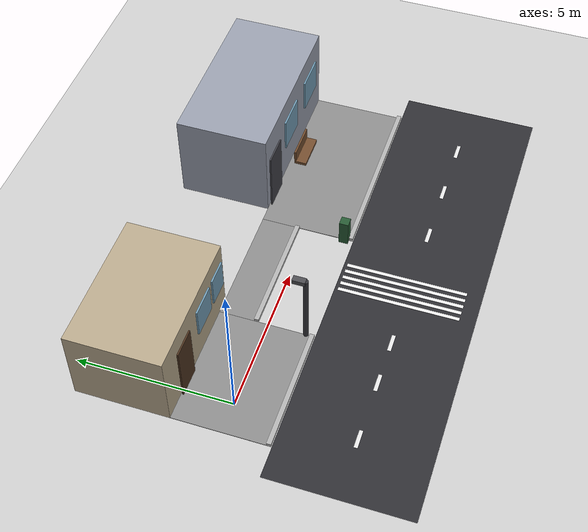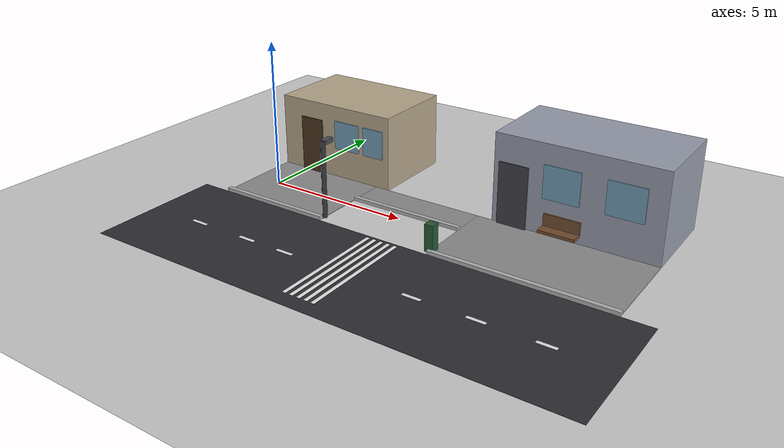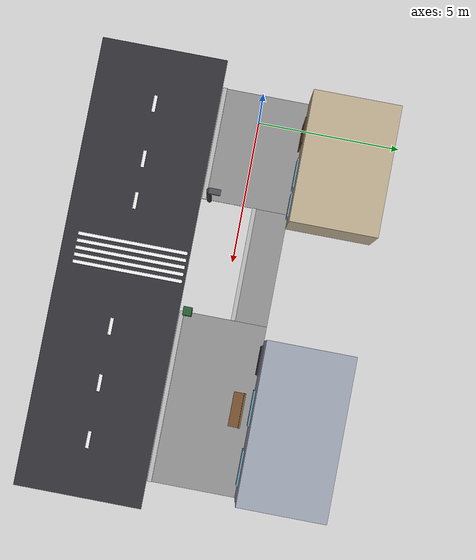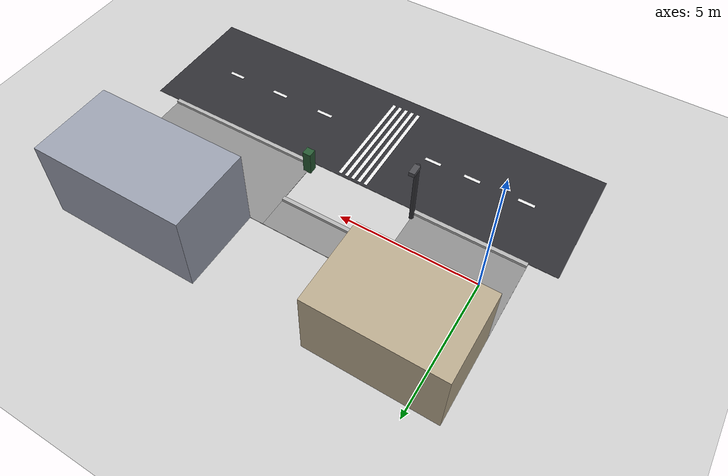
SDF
<?xml version="1.0"?>
<sdf version="1.6">
  <world name="urban_world">

    <include><uri>model://sun</uri></include>
    <include><uri>model://ground_plane</uri></include>

    <!-- Extra fill light so the tall facades do not cast the walkway into deep shadow.
         Uses no online model DB. -->
    <light name="fill" type="directional">
      <pose>4 -2 8 0 0 0</pose>
      <diffuse>0.5 0.5 0.5 1</diffuse>
      <specular>0.1 0.1 0.1 1</specular>
      <direction>-0.3 0.4 -1.0</direction>
      <cast_shadows>false</cast_shadows>
    </light>

    <physics type="ode">
      <max_step_size>0.005</max_step_size>
      <real_time_factor>1.0</real_time_factor>
      <real_time_update_rate>200</real_time_update_rate>
    </physics>

    <!-- Provides /gazebo/set_entity_state so the pedestrian manager can move people. -->
    <plugin name="gazebo_ros_state" filename="libgazebo_ros_state.so">
      <ros><namespace>/gazebo</namespace></ros>
      <update_rate>20.0</update_rate>
    </plugin>

    <!-- Road surface (visual only, thin). -->
    <model name="road">
      <static>true</static>
      <link name="link">
        <visual name="v">
          <pose>6 -3.75 0.005 0 0 0</pose>
          <geometry><box><size>16 4.5 0.01</size></box></geometry>
          <material>
            <ambient>0.18 0.18 0.20 1</ambient>
            <diffuse>0.18 0.18 0.20 1</diffuse>
          </material>
        </visual>
      </link>
    </model>

    <!-- Dashed centre line down the road. -->
    <model name="lane_markings">
      <static>true</static>
      <link name="link">
        <visual name="d0"><pose>0 -3.75 0.012 0 0 0</pose>
          <geometry><box><size>0.6 0.12 0.01</size></box></geometry>
          <material><ambient>0.9 0.9 0.9 1</ambient><diffuse>0.9 0.9 0.9 1</diffuse></material></visual>
        <visual name="d1"><pose>2 -3.75 0.012 0 0 0</pose>
          <geometry><box><size>0.6 0.12 0.01</size></box></geometry>
          <material><ambient>0.9 0.9 0.9 1</ambient><diffuse>0.9 0.9 0.9 1</diffuse></material></visual>
        <visual name="d2"><pose>3.5 -3.75 0.012 0 0 0</pose>
          <geometry><box><size>0.6 0.12 0.01</size></box></geometry>
          <material><ambient>0.9 0.9 0.9 1</ambient><diffuse>0.9 0.9 0.9 1</diffuse></material></visual>
        <visual name="d3"><pose>8 -3.75 0.012 0 0 0</pose>
          <geometry><box><size>0.6 0.12 0.01</size></box></geometry>
          <material><ambient>0.9 0.9 0.9 1</ambient><diffuse>0.9 0.9 0.9 1</diffuse></material></visual>
        <visual name="d4"><pose>10 -3.75 0.012 0 0 0</pose>
          <geometry><box><size>0.6 0.12 0.01</size></box></geometry>
          <material><ambient>0.9 0.9 0.9 1</ambient><diffuse>0.9 0.9 0.9 1</diffuse></material></visual>
        <visual name="d5"><pose>12 -3.75 0.012 0 0 0</pose>
          <geometry><box><size>0.6 0.12 0.01</size></box></geometry>
          <material><ambient>0.9 0.9 0.9 1</ambient><diffuse>0.9 0.9 0.9 1</diffuse></material></visual>
      </link>
    </model>

    <!-- Zebra crossing on the road at x ~ 5.5 (bars perpendicular to traffic). -->
    <model name="crossing">
      <static>true</static>
      <link name="link">
        <visual name="b0"><pose>5.00 -3.55 0.012 0 0 0</pose>
          <geometry><box><size>0.12 3.9 0.01</size></box></geometry>
          <material><ambient>0.92 0.92 0.92 1</ambient><diffuse>0.92 0.92 0.92 1</diffuse></material></visual>
        <visual name="b1"><pose>5.25 -3.55 0.012 0 0 0</pose>
          <geometry><box><size>0.12 3.9 0.01</size></box></geometry>
          <material><ambient>0.92 0.92 0.92 1</ambient><diffuse>0.92 0.92 0.92 1</diffuse></material></visual>
        <visual name="b2"><pose>5.50 -3.55 0.012 0 0 0</pose>
          <geometry><box><size>0.12 3.9 0.01</size></box></geometry>
          <material><ambient>0.92 0.92 0.92 1</ambient><diffuse>0.92 0.92 0.92 1</diffuse></material></visual>
        <visual name="b3"><pose>5.75 -3.55 0.012 0 0 0</pose>
          <geometry><box><size>0.12 3.9 0.01</size></box></geometry>
          <material><ambient>0.92 0.92 0.92 1</ambient><diffuse>0.92 0.92 0.92 1</diffuse></material></visual>
        <visual name="b4"><pose>6.00 -3.55 0.012 0 0 0</pose>
          <geometry><box><size>0.12 3.9 0.01</size></box></geometry>
          <material><ambient>0.92 0.92 0.92 1</ambient><diffuse>0.92 0.92 0.92 1</diffuse></material></visual>
      </link>
    </model>

    <!-- Sidewalk surface in three segments: wide (3.0 m) - narrow pinch (1.2 m) - wide. -->
    <model name="sidewalk">
      <static>true</static>
      <link name="link">
        <visual name="wide_west"><pose>1 0.1 0.01 0 0 0</pose>
          <geometry><box><size>4 3.0 0.02</size></box></geometry>
          <material><ambient>0.55 0.55 0.55 1</ambient><diffuse>0.55 0.55 0.55 1</diffuse></material></visual>
        <visual name="pinch"><pose>5 1.0 0.01 0 0 0</pose>
          <geometry><box><size>4 1.2 0.02</size></box></geometry>
          <material><ambient>0.55 0.55 0.55 1</ambient><diffuse>0.55 0.55 0.55 1</diffuse></material></visual>
        <visual name="wide_east"><pose>10 0.1 0.01 0 0 0</pose>
          <geometry><box><size>6 3.0 0.02</size></box></geometry>
          <material><ambient>0.55 0.55 0.55 1</ambient><diffuse>0.55 0.55 0.55 1</diffuse></material></visual>
      </link>
    </model>

    <!-- Curbs along the sidewalk/road boundary (low, visual only). -->
    <model name="curbs">
      <static>true</static>
      <link name="link">
        <visual name="west"><pose>1 -1.4 0.06 0 0 0</pose>
          <geometry><box><size>4 0.15 0.12</size></box></geometry>
          <material><ambient>0.7 0.7 0.7 1</ambient><diffuse>0.7 0.7 0.7 1</diffuse></material></visual>
        <visual name="pinch"><pose>5 0.4 0.06 0 0 0</pose>
          <geometry><box><size>4 0.15 0.12</size></box></geometry>
          <material><ambient>0.7 0.7 0.7 1</ambient><diffuse>0.7 0.7 0.7 1</diffuse></material></visual>
        <visual name="east"><pose>10 -1.4 0.06 0 0 0</pose>
          <geometry><box><size>6 0.15 0.12</size></box></geometry>
          <material><ambient>0.7 0.7 0.7 1</ambient><diffuse>0.7 0.7 0.7 1</diffuse></material></visual>
      </link>
    </model>

    <!-- Building A (west) facade, x in [-1, 3.5]. Body box + recessed door/window panels. -->
    <model name="building_a">
      <static>true</static>
      <link name="body">
        <pose>1.25 3.1 1.3 0 0 0</pose>
        <collision name="c"><geometry><box><size>4.5 3.0 2.6</size></box></geometry></collision>
        <visual name="v"><geometry><box><size>4.5 3.0 2.6</size></box></geometry>
          <material><ambient>0.72 0.66 0.55 1</ambient><diffuse>0.72 0.66 0.55 1</diffuse></material></visual>
      </link>
      <link name="trim">
        <visual name="door"><pose>0.3 1.54 1.0 0 0 0</pose>
          <geometry><box><size>0.9 0.05 2.0</size></box></geometry>
          <material><ambient>0.30 0.20 0.12 1</ambient><diffuse>0.30 0.20 0.12 1</diffuse></material></visual>
        <visual name="win1"><pose>1.8 1.54 1.6 0 0 0</pose>
          <geometry><box><size>1.0 0.05 1.0</size></box></geometry>
          <material><ambient>0.45 0.62 0.72 1</ambient><diffuse>0.45 0.62 0.72 1</diffuse></material></visual>
        <visual name="win2"><pose>2.9 1.54 1.6 0 0 0</pose>
          <geometry><box><size>0.8 0.05 1.0</size></box></geometry>
          <material><ambient>0.45 0.62 0.72 1</ambient><diffuse>0.45 0.62 0.72 1</diffuse></material></visual>
      </link>
    </model>

    <!-- Building B (east) facade, x in [7.5, 13]. -->
    <model name="building_b">
      <static>true</static>
      <link name="body">
        <pose>10.25 3.1 1.5 0 0 0</pose>
        <collision name="c"><geometry><box><size>5.5 3.0 3.0</size></box></geometry></collision>
        <visual name="v"><geometry><box><size>5.5 3.0 3.0</size></box></geometry>
          <material><ambient>0.60 0.62 0.68 1</ambient><diffuse>0.60 0.62 0.68 1</diffuse></material></visual>
      </link>
      <link name="trim">
        <visual name="door"><pose>8.2 1.54 1.05 0 0 0</pose>
          <geometry><box><size>1.0 0.05 2.1</size></box></geometry>
          <material><ambient>0.25 0.25 0.28 1</ambient><diffuse>0.25 0.25 0.28 1</diffuse></material></visual>
        <visual name="win1"><pose>9.8 1.54 1.8 0 0 0</pose>
          <geometry><box><size>1.2 0.05 1.1</size></box></geometry>
          <material><ambient>0.45 0.62 0.72 1</ambient><diffuse>0.45 0.62 0.72 1</diffuse></material></visual>
        <visual name="win2"><pose>11.8 1.54 1.8 0 0 0</pose>
          <geometry><box><size>1.2 0.05 1.1</size></box></geometry>
          <material><ambient>0.45 0.62 0.72 1</ambient><diffuse>0.45 0.62 0.72 1</diffuse></material></visual>
      </link>
    </model>

    <!-- Street furniture: lamp post, bin, bench (collisions on, lidar-visible). -->
    <model name="lamp_post">
      <static>true</static>
      <link name="link">
        <collision name="c"><pose>3 -1.2 1.3 0 0 0</pose>
          <geometry><cylinder><radius>0.08</radius><length>2.6</length></cylinder></geometry></collision>
        <visual name="pole"><pose>3 -1.2 1.3 0 0 0</pose>
          <geometry><cylinder><radius>0.08</radius><length>2.6</length></cylinder></geometry>
          <material><ambient>0.20 0.20 0.22 1</ambient><diffuse>0.20 0.20 0.22 1</diffuse></material></visual>
        <visual name="head"><pose>3 -1.0 2.55 0 0 0</pose>
          <geometry><box><size>0.2 0.4 0.15</size></box></geometry>
          <material><ambient>0.30 0.30 0.32 1</ambient><diffuse>0.30 0.30 0.32 1</diffuse></material></visual>
      </link>
    </model>

    <model name="bin">
      <static>true</static>
      <link name="link">
        <pose>7 -1.2 0.45 0 0 0</pose>
        <collision name="c"><geometry><box><size>0.3 0.3 0.9</size></box></geometry></collision>
        <visual name="v"><geometry><box><size>0.3 0.3 0.9</size></box></geometry>
          <material><ambient>0.15 0.35 0.20 1</ambient><diffuse>0.15 0.35 0.20 1</diffuse></material></visual>
      </link>
    </model>

    <model name="bench">
      <static>true</static>
      <link name="seat">
        <pose>10 1.1 0.45 0 0 0</pose>
        <collision name="c"><geometry><box><size>1.2 0.4 0.9</size></box></geometry></collision>
        <visual name="v"><geometry><box><size>1.2 0.4 0.1</size></box></geometry>
          <material><ambient>0.45 0.30 0.18 1</ambient><diffuse>0.45 0.30 0.18 1</diffuse></material></visual>
      </link>
      <link name="back">
        <pose>10 1.28 0.7 0 0 0</pose>
        <visual name="v"><geometry><box><size>1.2 0.06 0.4</size></box></geometry>
          <material><ambient>0.45 0.30 0.18 1</ambient><diffuse>0.45 0.30 0.18 1</diffuse></material></visual>
      </link>
    </model>

  </world>
</sdf>
